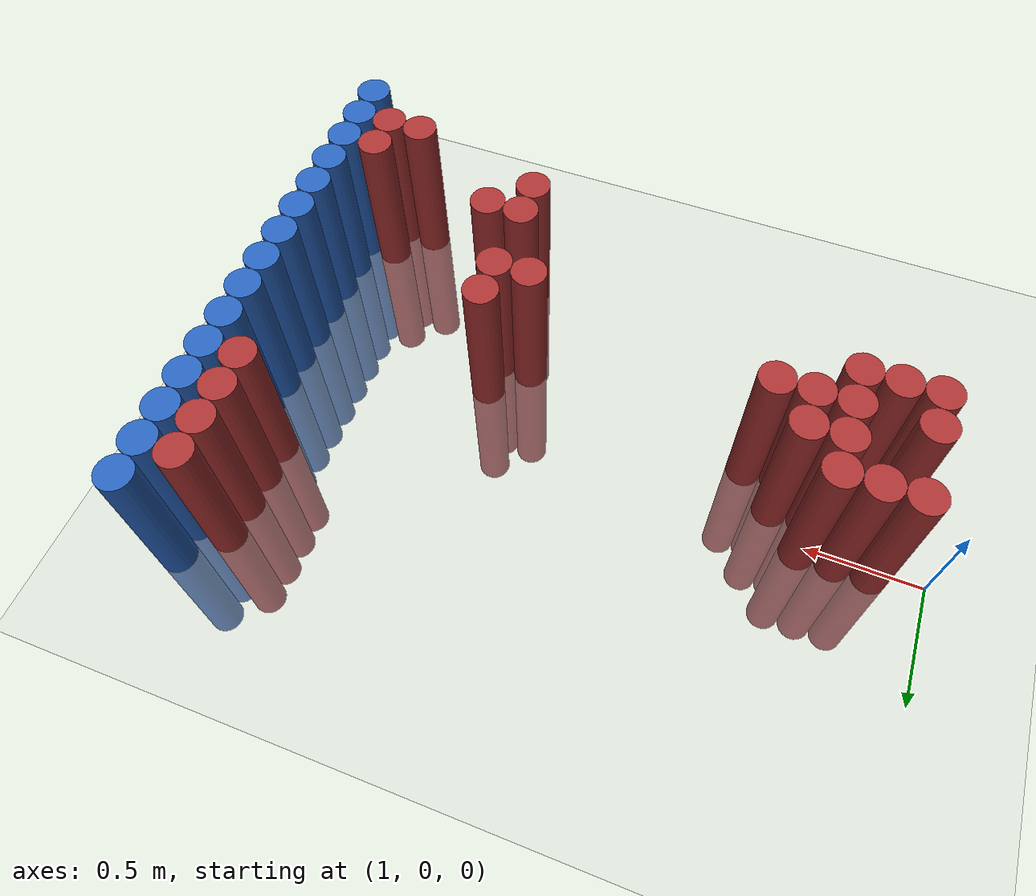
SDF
<sdf version="1.6">
 <world name="default">
  <model name="ground_plane">
   <static>1</static>
   <link name="link">
    <collision name="collision">
     <geometry><plane><normal>0 0 1</normal><size>100 100</size></plane></geometry>
     <surface><friction><ode><mu>100</mu><mu2>50</mu2></ode></friction></surface>
    </collision>
    <visual name="visual">
     <cast_shadows>0</cast_shadows>
     <geometry><plane><normal>0 0 1</normal><size>100 100</size></plane></geometry>
     <material>
      <script><uri>file://media/materials/scripts/gazebo.material</uri><name>Gazebo/Grey</name></script>
     </material>
    </visual>
   </link>
  </model>
  <model name="unit_cylinder_98">
   <static>1</static>
   <pose>3.925000 -1.175000 0.000000 0.000000 0.000000 0.000000</pose>
   <link name="link">
    <inertial>
     <mass>1</mass>
     <inertia><ixx>0.145833</ixx><ixy>0</ixy><ixz>0</ixz><iyy>0.145833</iyy><iyz>0</iyz><izz>0.125</izz></inertia>
    </inertial>
    <collision name="collision">
     <geometry><cylinder><radius>0.075000</radius><length>1.5</length></cylinder></geometry>
    </collision>
    <visual name="visual">
     <geometry><cylinder><radius>0.075000</radius><length>1.5</length></cylinder></geometry>
     <material>
      <ambient>0.152000 0.379000 0.720000 1</ambient>
      <diffuse>0.152000 0.379000 0.720000 1</diffuse>
     </material>
     <material>
      <script><name>Gazebo/Grey</name><uri>file://media/materials/scripts/gazebo.material</uri></script>
     </material>
    </visual>
   </link>
  </model>
  <model name="unit_cylinder_100">
   <static>1</static>
   <pose>3.925000 -1.025000 0.000000 0.000000 0.000000 0.000000</pose>
   <link name="link">
    <inertial>
     <mass>1</mass>
     <inertia><ixx>0.145833</ixx><ixy>0</ixy><ixz>0</ixz><iyy>0.145833</iyy><iyz>0</iyz><izz>0.125</izz></inertia>
    </inertial>
    <collision name="collision">
     <geometry><cylinder><radius>0.075000</radius><length>1.5</length></cylinder></geometry>
    </collision>
    <visual name="visual">
     <geometry><cylinder><radius>0.075000</radius><length>1.5</length></cylinder></geometry>
     <material>
      <ambient>0.152000 0.379000 0.720000 1</ambient>
      <diffuse>0.152000 0.379000 0.720000 1</diffuse>
     </material>
     <material>
      <script><name>Gazebo/Grey</name><uri>file://media/materials/scripts/gazebo.material</uri></script>
     </material>
    </visual>
   </link>
  </model>
  <model name="unit_cylinder_102">
   <static>1</static>
   <pose>3.925000 -0.875000 0.000000 0.000000 0.000000 0.000000</pose>
   <link name="link">
    <inertial>
     <mass>1</mass>
     <inertia><ixx>0.145833</ixx><ixy>0</ixy><ixz>0</ixz><iyy>0.145833</iyy><iyz>0</iyz><izz>0.125</izz></inertia>
    </inertial>
    <collision name="collision">
     <geometry><cylinder><radius>0.075000</radius><length>1.5</length></cylinder></geometry>
    </collision>
    <visual name="visual">
     <geometry><cylinder><radius>0.075000</radius><length>1.5</length></cylinder></geometry>
     <material>
      <ambient>0.152000 0.379000 0.720000 1</ambient>
      <diffuse>0.152000 0.379000 0.720000 1</diffuse>
     </material>
     <material>
      <script><name>Gazebo/Grey</name><uri>file://media/materials/scripts/gazebo.material</uri></script>
     </material>
    </visual>
   </link>
  </model>
  <model name="unit_cylinder_104">
   <static>1</static>
   <pose>3.925000 -0.725000 0.000000 0.000000 0.000000 0.000000</pose>
   <link name="link">
    <inertial>
     <mass>1</mass>
     <inertia><ixx>0.145833</ixx><ixy>0</ixy><ixz>0</ixz><iyy>0.145833</iyy><iyz>0</iyz><izz>0.125</izz></inertia>
    </inertial>
    <collision name="collision">
     <geometry><cylinder><radius>0.075000</radius><length>1.5</length></cylinder></geometry>
    </collision>
    <visual name="visual">
     <geometry><cylinder><radius>0.075000</radius><length>1.5</length></cylinder></geometry>
     <material>
      <ambient>0.152000 0.379000 0.720000 1</ambient>
      <diffuse>0.152000 0.379000 0.720000 1</diffuse>
     </material>
     <material>
      <script><name>Gazebo/Grey</name><uri>file://media/materials/scripts/gazebo.material</uri></script>
     </material>
    </visual>
   </link>
  </model>
  <model name="unit_cylinder_106">
   <static>1</static>
   <pose>3.925000 -0.575000 0.000000 0.000000 0.000000 0.000000</pose>
   <link name="link">
    <inertial>
     <mass>1</mass>
     <inertia><ixx>0.145833</ixx><ixy>0</ixy><ixz>0</ixz><iyy>0.145833</iyy><iyz>0</iyz><izz>0.125</izz></inertia>
    </inertial>
    <collision name="collision">
     <geometry><cylinder><radius>0.075000</radius><length>1.5</length></cylinder></geometry>
    </collision>
    <visual name="visual">
     <geometry><cylinder><radius>0.075000</radius><length>1.5</length></cylinder></geometry>
     <material>
      <ambient>0.152000 0.379000 0.720000 1</ambient>
      <diffuse>0.152000 0.379000 0.720000 1</diffuse>
     </material>
     <material>
      <script><name>Gazebo/Grey</name><uri>file://media/materials/scripts/gazebo.material</uri></script>
     </material>
    </visual>
   </link>
  </model>
  <model name="unit_cylinder_108">
   <static>1</static>
   <pose>3.925000 -0.425000 0.000000 0.000000 0.000000 0.000000</pose>
   <link name="link">
    <inertial>
     <mass>1</mass>
     <inertia><ixx>0.145833</ixx><ixy>0</ixy><ixz>0</ixz><iyy>0.145833</iyy><iyz>0</iyz><izz>0.125</izz></inertia>
    </inertial>
    <collision name="collision">
     <geometry><cylinder><radius>0.075000</radius><length>1.5</length></cylinder></geometry>
    </collision>
    <visual name="visual">
     <geometry><cylinder><radius>0.075000</radius><length>1.5</length></cylinder></geometry>
     <material>
      <ambient>0.152000 0.379000 0.720000 1</ambient>
      <diffuse>0.152000 0.379000 0.720000 1</diffuse>
     </material>
     <material>
      <script><name>Gazebo/Grey</name><uri>file://media/materials/scripts/gazebo.material</uri></script>
     </material>
    </visual>
   </link>
  </model>
  <model name="unit_cylinder_110">
   <static>1</static>
   <pose>3.925000 -0.275000 0.000000 0.000000 0.000000 0.000000</pose>
   <link name="link">
    <inertial>
     <mass>1</mass>
     <inertia><ixx>0.145833</ixx><ixy>0</ixy><ixz>0</ixz><iyy>0.145833</iyy><iyz>0</iyz><izz>0.125</izz></inertia>
    </inertial>
    <collision name="collision">
     <geometry><cylinder><radius>0.075000</radius><length>1.5</length></cylinder></geometry>
    </collision>
    <visual name="visual">
     <geometry><cylinder><radius>0.075000</radius><length>1.5</length></cylinder></geometry>
     <material>
      <ambient>0.152000 0.379000 0.720000 1</ambient>
      <diffuse>0.152000 0.379000 0.720000 1</diffuse>
     </material>
     <material>
      <script><name>Gazebo/Grey</name><uri>file://media/materials/scripts/gazebo.material</uri></script>
     </material>
    </visual>
   </link>
  </model>
  <model name="unit_cylinder_112">
   <static>1</static>
   <pose>3.925000 -0.125000 0.000000 0.000000 0.000000 0.000000</pose>
   <link name="link">
    <inertial>
     <mass>1</mass>
     <inertia><ixx>0.145833</ixx><ixy>0</ixy><ixz>0</ixz><iyy>0.145833</iyy><iyz>0</iyz><izz>0.125</izz></inertia>
    </inertial>
    <collision name="collision">
     <geometry><cylinder><radius>0.075000</radius><length>1.5</length></cylinder></geometry>
    </collision>
    <visual name="visual">
     <geometry><cylinder><radius>0.075000</radius><length>1.5</length></cylinder></geometry>
     <material>
      <ambient>0.152000 0.379000 0.720000 1</ambient>
      <diffuse>0.152000 0.379000 0.720000 1</diffuse>
     </material>
     <material>
      <script><name>Gazebo/Grey</name><uri>file://media/materials/scripts/gazebo.material</uri></script>
     </material>
    </visual>
   </link>
  </model>
  <model name="unit_cylinder_114">
   <static>1</static>
   <pose>3.925000 0.025000 0.000000 0.000000 0.000000 0.000000</pose>
   <link name="link">
    <inertial>
     <mass>1</mass>
     <inertia><ixx>0.145833</ixx><ixy>0</ixy><ixz>0</ixz><iyy>0.145833</iyy><iyz>0</iyz><izz>0.125</izz></inertia>
    </inertial>
    <collision name="collision">
     <geometry><cylinder><radius>0.075000</radius><length>1.5</length></cylinder></geometry>
    </collision>
    <visual name="visual">
     <geometry><cylinder><radius>0.075000</radius><length>1.5</length></cylinder></geometry>
     <material>
      <ambient>0.152000 0.379000 0.720000 1</ambient>
      <diffuse>0.152000 0.379000 0.720000 1</diffuse>
     </material>
     <material>
      <script><name>Gazebo/Grey</name><uri>file://media/materials/scripts/gazebo.material</uri></script>
     </material>
    </visual>
   </link>
  </model>
  <model name="unit_cylinder_116">
   <static>1</static>
   <pose>3.925000 0.175000 0.000000 0.000000 0.000000 0.000000</pose>
   <link name="link">
    <inertial>
     <mass>1</mass>
     <inertia><ixx>0.145833</ixx><ixy>0</ixy><ixz>0</ixz><iyy>0.145833</iyy><iyz>0</iyz><izz>0.125</izz></inertia>
    </inertial>
    <collision name="collision">
     <geometry><cylinder><radius>0.075000</radius><length>1.5</length></cylinder></geometry>
    </collision>
    <visual name="visual">
     <geometry><cylinder><radius>0.075000</radius><length>1.5</length></cylinder></geometry>
     <material>
      <ambient>0.152000 0.379000 0.720000 1</ambient>
      <diffuse>0.152000 0.379000 0.720000 1</diffuse>
     </material>
     <material>
      <script><name>Gazebo/Grey</name><uri>file://media/materials/scripts/gazebo.material</uri></script>
     </material>
    </visual>
   </link>
  </model>
  <model name="unit_cylinder_118">
   <static>1</static>
   <pose>3.925000 0.325000 0.000000 0.000000 0.000000 0.000000</pose>
   <link name="link">
    <inertial>
     <mass>1</mass>
     <inertia><ixx>0.145833</ixx><ixy>0</ixy><ixz>0</ixz><iyy>0.145833</iyy><iyz>0</iyz><izz>0.125</izz></inertia>
    </inertial>
    <collision name="collision">
     <geometry><cylinder><radius>0.075000</radius><length>1.5</length></cylinder></geometry>
    </collision>
    <visual name="visual">
     <geometry><cylinder><radius>0.075000</radius><length>1.5</length></cylinder></geometry>
     <material>
      <ambient>0.152000 0.379000 0.720000 1</ambient>
      <diffuse>0.152000 0.379000 0.720000 1</diffuse>
     </material>
     <material>
      <script><name>Gazebo/Grey</name><uri>file://media/materials/scripts/gazebo.material</uri></script>
     </material>
    </visual>
   </link>
  </model>
  <model name="unit_cylinder_120">
   <static>1</static>
   <pose>3.925000 0.475000 0.000000 0.000000 0.000000 0.000000</pose>
   <link name="link">
    <inertial>
     <mass>1</mass>
     <inertia><ixx>0.145833</ixx><ixy>0</ixy><ixz>0</ixz><iyy>0.145833</iyy><iyz>0</iyz><izz>0.125</izz></inertia>
    </inertial>
    <collision name="collision">
     <geometry><cylinder><radius>0.075000</radius><length>1.5</length></cylinder></geometry>
    </collision>
    <visual name="visual">
     <geometry><cylinder><radius>0.075000</radius><length>1.5</length></cylinder></geometry>
     <material>
      <ambient>0.152000 0.379000 0.720000 1</ambient>
      <diffuse>0.152000 0.379000 0.720000 1</diffuse>
     </material>
     <material>
      <script><name>Gazebo/Grey</name><uri>file://media/materials/scripts/gazebo.material</uri></script>
     </material>
    </visual>
   </link>
  </model>
  <model name="unit_cylinder_122">
   <static>1</static>
   <pose>3.925000 0.625000 0.000000 0.000000 0.000000 0.000000</pose>
   <link name="link">
    <inertial>
     <mass>1</mass>
     <inertia><ixx>0.145833</ixx><ixy>0</ixy><ixz>0</ixz><iyy>0.145833</iyy><iyz>0</iyz><izz>0.125</izz></inertia>
    </inertial>
    <collision name="collision">
     <geometry><cylinder><radius>0.075000</radius><length>1.5</length></cylinder></geometry>
    </collision>
    <visual name="visual">
     <geometry><cylinder><radius>0.075000</radius><length>1.5</length></cylinder></geometry>
     <material>
      <ambient>0.152000 0.379000 0.720000 1</ambient>
      <diffuse>0.152000 0.379000 0.720000 1</diffuse>
     </material>
     <material>
      <script><name>Gazebo/Grey</name><uri>file://media/materials/scripts/gazebo.material</uri></script>
     </material>
    </visual>
   </link>
  </model>
  <model name="unit_cylinder_124">
   <static>1</static>
   <pose>3.925000 0.775000 0.000000 0.000000 0.000000 0.000000</pose>
   <link name="link">
    <inertial>
     <mass>1</mass>
     <inertia><ixx>0.145833</ixx><ixy>0</ixy><ixz>0</ixz><iyy>0.145833</iyy><iyz>0</iyz><izz>0.125</izz></inertia>
    </inertial>
    <collision name="collision">
     <geometry><cylinder><radius>0.075000</radius><length>1.5</length></cylinder></geometry>
    </collision>
    <visual name="visual">
     <geometry><cylinder><radius>0.075000</radius><length>1.5</length></cylinder></geometry>
     <material>
      <ambient>0.152000 0.379000 0.720000 1</ambient>
      <diffuse>0.152000 0.379000 0.720000 1</diffuse>
     </material>
     <material>
      <script><name>Gazebo/Grey</name><uri>file://media/materials/scripts/gazebo.material</uri></script>
     </material>
    </visual>
   </link>
  </model>
  <model name="unit_cylinder_126">
   <static>1</static>
   <pose>3.925000 0.925000 0.000000 0.000000 0.000000 0.000000</pose>
   <link name="link">
    <inertial>
     <mass>1</mass>
     <inertia><ixx>0.145833</ixx><ixy>0</ixy><ixz>0</ixz><iyy>0.145833</iyy><iyz>0</iyz><izz>0.125</izz></inertia>
    </inertial>
    <collision name="collision">
     <geometry><cylinder><radius>0.075000</radius><length>1.5</length></cylinder></geometry>
    </collision>
    <visual name="visual">
     <geometry><cylinder><radius>0.075000</radius><length>1.5</length></cylinder></geometry>
     <material>
      <ambient>0.152000 0.379000 0.720000 1</ambient>
      <diffuse>0.152000 0.379000 0.720000 1</diffuse>
     </material>
     <material>
      <script><name>Gazebo/Grey</name><uri>file://media/materials/scripts/gazebo.material</uri></script>
     </material>
    </visual>
   </link>
  </model>
  <model name="unit_cylinder_409">
   <static>1</static>
   <pose>1.225000 -0.425000 0.000000 0.000000 0.000000 0.000000</pose>
   <link name="link">
    <inertial>
     <mass>1</mass>
     <inertia><ixx>0.145833</ixx><ixy>0</ixy><ixz>0</ixz><iyy>0.145833</iyy><iyz>0</iyz><izz>0.125</izz></inertia>
    </inertial>
    <collision name="collision">
     <geometry><cylinder><radius>0.075000</radius><length>1.5</length></cylinder></geometry>
    </collision>
    <visual name="visual">
     <geometry><cylinder><radius>0.075000</radius><length>1.5</length></cylinder></geometry>
     <material>
      <ambient>0.648000 0.192000 0.192000 1</ambient>
      <diffuse>0.648000 0.192000 0.192000 1</diffuse>
     </material>
     <material>
      <script><name>Gazebo/Grey</name><uri>file://media/materials/scripts/gazebo.material</uri></script>
     </material>
    </visual>
   </link>
  </model>
  <model name="unit_cylinder_410">
   <static>1</static>
   <pose>1.225000 -0.275000 0.000000 0.000000 0.000000 0.000000</pose>
   <link name="link">
    <inertial>
     <mass>1</mass>
     <inertia><ixx>0.145833</ixx><ixy>0</ixy><ixz>0</ixz><iyy>0.145833</iyy><iyz>0</iyz><izz>0.125</izz></inertia>
    </inertial>
    <collision name="collision">
     <geometry><cylinder><radius>0.075000</radius><length>1.5</length></cylinder></geometry>
    </collision>
    <visual name="visual">
     <geometry><cylinder><radius>0.075000</radius><length>1.5</length></cylinder></geometry>
     <material>
      <ambient>0.648000 0.192000 0.192000 1</ambient>
      <diffuse>0.648000 0.192000 0.192000 1</diffuse>
     </material>
     <material>
      <script><name>Gazebo/Grey</name><uri>file://media/materials/scripts/gazebo.material</uri></script>
     </material>
    </visual>
   </link>
  </model>
  <model name="unit_cylinder_411">
   <static>1</static>
   <pose>1.225000 0.025000 0.000000 0.000000 0.000000 0.000000</pose>
   <link name="link">
    <inertial>
     <mass>1</mass>
     <inertia><ixx>0.145833</ixx><ixy>0</ixy><ixz>0</ixz><iyy>0.145833</iyy><iyz>0</iyz><izz>0.125</izz></inertia>
    </inertial>
    <collision name="collision">
     <geometry><cylinder><radius>0.075000</radius><length>1.5</length></cylinder></geometry>
    </collision>
    <visual name="visual">
     <geometry><cylinder><radius>0.075000</radius><length>1.5</length></cylinder></geometry>
     <material>
      <ambient>0.648000 0.192000 0.192000 1</ambient>
      <diffuse>0.648000 0.192000 0.192000 1</diffuse>
     </material>
     <material>
      <script><name>Gazebo/Grey</name><uri>file://media/materials/scripts/gazebo.material</uri></script>
     </material>
    </visual>
   </link>
  </model>
  <model name="unit_cylinder_413">
   <static>1</static>
   <pose>1.375000 -0.425000 0.000000 0.000000 0.000000 0.000000</pose>
   <link name="link">
    <inertial>
     <mass>1</mass>
     <inertia><ixx>0.145833</ixx><ixy>0</ixy><ixz>0</ixz><iyy>0.145833</iyy><iyz>0</iyz><izz>0.125</izz></inertia>
    </inertial>
    <collision name="collision">
     <geometry><cylinder><radius>0.075000</radius><length>1.5</length></cylinder></geometry>
    </collision>
    <visual name="visual">
     <geometry><cylinder><radius>0.075000</radius><length>1.5</length></cylinder></geometry>
     <material>
      <ambient>0.648000 0.192000 0.192000 1</ambient>
      <diffuse>0.648000 0.192000 0.192000 1</diffuse>
     </material>
     <material>
      <script><name>Gazebo/Grey</name><uri>file://media/materials/scripts/gazebo.material</uri></script>
     </material>
    </visual>
   </link>
  </model>
  <model name="unit_cylinder_414">
   <static>1</static>
   <pose>1.375000 0.025000 0.000000 0.000000 0.000000 0.000000</pose>
   <link name="link">
    <inertial>
     <mass>1</mass>
     <inertia><ixx>0.145833</ixx><ixy>0</ixy><ixz>0</ixz><iyy>0.145833</iyy><iyz>0</iyz><izz>0.125</izz></inertia>
    </inertial>
    <collision name="collision">
     <geometry><cylinder><radius>0.075000</radius><length>1.5</length></cylinder></geometry>
    </collision>
    <visual name="visual">
     <geometry><cylinder><radius>0.075000</radius><length>1.5</length></cylinder></geometry>
     <material>
      <ambient>0.648000 0.192000 0.192000 1</ambient>
      <diffuse>0.648000 0.192000 0.192000 1</diffuse>
     </material>
     <material>
      <script><name>Gazebo/Grey</name><uri>file://media/materials/scripts/gazebo.material</uri></script>
     </material>
    </visual>
   </link>
  </model>
  <model name="unit_cylinder_416">
   <static>1</static>
   <pose>1.525000 -0.425000 0.000000 0.000000 0.000000 0.000000</pose>
   <link name="link">
    <inertial>
     <mass>1</mass>
     <inertia><ixx>0.145833</ixx><ixy>0</ixy><ixz>0</ixz><iyy>0.145833</iyy><iyz>0</iyz><izz>0.125</izz></inertia>
    </inertial>
    <collision name="collision">
     <geometry><cylinder><radius>0.075000</radius><length>1.5</length></cylinder></geometry>
    </collision>
    <visual name="visual">
     <geometry><cylinder><radius>0.075000</radius><length>1.5</length></cylinder></geometry>
     <material>
      <ambient>0.648000 0.192000 0.192000 1</ambient>
      <diffuse>0.648000 0.192000 0.192000 1</diffuse>
     </material>
     <material>
      <script><name>Gazebo/Grey</name><uri>file://media/materials/scripts/gazebo.material</uri></script>
     </material>
    </visual>
   </link>
  </model>
  <model name="unit_cylinder_417">
   <static>1</static>
   <pose>1.525000 -0.275000 0.000000 0.000000 0.000000 0.000000</pose>
   <link name="link">
    <inertial>
     <mass>1</mass>
     <inertia><ixx>0.145833</ixx><ixy>0</ixy><ixz>0</ixz><iyy>0.145833</iyy><iyz>0</iyz><izz>0.125</izz></inertia>
    </inertial>
    <collision name="collision">
     <geometry><cylinder><radius>0.075000</radius><length>1.5</length></cylinder></geometry>
    </collision>
    <visual name="visual">
     <geometry><cylinder><radius>0.075000</radius><length>1.5</length></cylinder></geometry>
     <material>
      <ambient>0.648000 0.192000 0.192000 1</ambient>
      <diffuse>0.648000 0.192000 0.192000 1</diffuse>
     </material>
     <material>
      <script><name>Gazebo/Grey</name><uri>file://media/materials/scripts/gazebo.material</uri></script>
     </material>
    </visual>
   </link>
  </model>
  <model name="unit_cylinder_418">
   <static>1</static>
   <pose>1.525000 -0.125000 0.000000 0.000000 0.000000 0.000000</pose>
   <link name="link">
    <inertial>
     <mass>1</mass>
     <inertia><ixx>0.145833</ixx><ixy>0</ixy><ixz>0</ixz><iyy>0.145833</iyy><iyz>0</iyz><izz>0.125</izz></inertia>
    </inertial>
    <collision name="collision">
     <geometry><cylinder><radius>0.075000</radius><length>1.5</length></cylinder></geometry>
    </collision>
    <visual name="visual">
     <geometry><cylinder><radius>0.075000</radius><length>1.5</length></cylinder></geometry>
     <material>
      <ambient>0.648000 0.192000 0.192000 1</ambient>
      <diffuse>0.648000 0.192000 0.192000 1</diffuse>
     </material>
     <material>
      <script><name>Gazebo/Grey</name><uri>file://media/materials/scripts/gazebo.material</uri></script>
     </material>
    </visual>
   </link>
  </model>
  <model name="unit_cylinder_419">
   <static>1</static>
   <pose>1.525000 0.025000 0.000000 0.000000 0.000000 0.000000</pose>
   <link name="link">
    <inertial>
     <mass>1</mass>
     <inertia><ixx>0.145833</ixx><ixy>0</ixy><ixz>0</ixz><iyy>0.145833</iyy><iyz>0</iyz><izz>0.125</izz></inertia>
    </inertial>
    <collision name="collision">
     <geometry><cylinder><radius>0.075000</radius><length>1.5</length></cylinder></geometry>
    </collision>
    <visual name="visual">
     <geometry><cylinder><radius>0.075000</radius><length>1.5</length></cylinder></geometry>
     <material>
      <ambient>0.648000 0.192000 0.192000 1</ambient>
      <diffuse>0.648000 0.192000 0.192000 1</diffuse>
     </material>
     <material>
      <script><name>Gazebo/Grey</name><uri>file://media/materials/scripts/gazebo.material</uri></script>
     </material>
    </visual>
   </link>
  </model>
  <model name="unit_cylinder_422">
   <static>1</static>
   <pose>1.675000 -0.275000 0.000000 0.000000 0.000000 0.000000</pose>
   <link name="link">
    <inertial>
     <mass>1</mass>
     <inertia><ixx>0.145833</ixx><ixy>0</ixy><ixz>0</ixz><iyy>0.145833</iyy><iyz>0</iyz><izz>0.125</izz></inertia>
    </inertial>
    <collision name="collision">
     <geometry><cylinder><radius>0.075000</radius><length>1.5</length></cylinder></geometry>
    </collision>
    <visual name="visual">
     <geometry><cylinder><radius>0.075000</radius><length>1.5</length></cylinder></geometry>
     <material>
      <ambient>0.648000 0.192000 0.192000 1</ambient>
      <diffuse>0.648000 0.192000 0.192000 1</diffuse>
     </material>
     <material>
      <script><name>Gazebo/Grey</name><uri>file://media/materials/scripts/gazebo.material</uri></script>
     </material>
    </visual>
   </link>
  </model>
  <model name="unit_cylinder_423">
   <static>1</static>
   <pose>1.675000 -0.125000 0.000000 0.000000 0.000000 0.000000</pose>
   <link name="link">
    <inertial>
     <mass>1</mass>
     <inertia><ixx>0.145833</ixx><ixy>0</ixy><ixz>0</ixz><iyy>0.145833</iyy><iyz>0</iyz><izz>0.125</izz></inertia>
    </inertial>
    <collision name="collision">
     <geometry><cylinder><radius>0.075000</radius><length>1.5</length></cylinder></geometry>
    </collision>
    <visual name="visual">
     <geometry><cylinder><radius>0.075000</radius><length>1.5</length></cylinder></geometry>
     <material>
      <ambient>0.648000 0.192000 0.192000 1</ambient>
      <diffuse>0.648000 0.192000 0.192000 1</diffuse>
     </material>
     <material>
      <script><name>Gazebo/Grey</name><uri>file://media/materials/scripts/gazebo.material</uri></script>
     </material>
    </visual>
   </link>
  </model>
  <model name="unit_cylinder_425">
   <static>1</static>
   <pose>1.825000 -0.275000 0.000000 0.000000 0.000000 0.000000</pose>
   <link name="link">
    <inertial>
     <mass>1</mass>
     <inertia><ixx>0.145833</ixx><ixy>0</ixy><ixz>0</ixz><iyy>0.145833</iyy><iyz>0</iyz><izz>0.125</izz></inertia>
    </inertial>
    <collision name="collision">
     <geometry><cylinder><radius>0.075000</radius><length>1.5</length></cylinder></geometry>
    </collision>
    <visual name="visual">
     <geometry><cylinder><radius>0.075000</radius><length>1.5</length></cylinder></geometry>
     <material>
      <ambient>0.648000 0.192000 0.192000 1</ambient>
      <diffuse>0.648000 0.192000 0.192000 1</diffuse>
     </material>
     <material>
      <script><name>Gazebo/Grey</name><uri>file://media/materials/scripts/gazebo.material</uri></script>
     </material>
    </visual>
   </link>
  </model>
  <model name="unit_cylinder_444">
   <static>1</static>
   <pose>2.875000 -0.425000 0.000000 0.000000 0.000000 0.000000</pose>
   <link name="link">
    <inertial>
     <mass>1</mass>
     <inertia><ixx>0.145833</ixx><ixy>0</ixy><ixz>0</ixz><iyy>0.145833</iyy><iyz>0</iyz><izz>0.125</izz></inertia>
    </inertial>
    <collision name="collision">
     <geometry><cylinder><radius>0.075000</radius><length>1.5</length></cylinder></geometry>
    </collision>
    <visual name="visual">
     <geometry><cylinder><radius>0.075000</radius><length>1.5</length></cylinder></geometry>
     <material>
      <ambient>0.648000 0.192000 0.192000 1</ambient>
      <diffuse>0.648000 0.192000 0.192000 1</diffuse>
     </material>
     <material>
      <script><name>Gazebo/Grey</name><uri>file://media/materials/scripts/gazebo.material</uri></script>
     </material>
    </visual>
   </link>
  </model>
  <model name="unit_cylinder_445">
   <static>1</static>
   <pose>3.025000 -0.875000 0.000000 0.000000 0.000000 0.000000</pose>
   <link name="link">
    <inertial>
     <mass>1</mass>
     <inertia><ixx>0.145833</ixx><ixy>0</ixy><ixz>0</ixz><iyy>0.145833</iyy><iyz>0</iyz><izz>0.125</izz></inertia>
    </inertial>
    <collision name="collision">
     <geometry><cylinder><radius>0.075000</radius><length>1.5</length></cylinder></geometry>
    </collision>
    <visual name="visual">
     <geometry><cylinder><radius>0.075000</radius><length>1.5</length></cylinder></geometry>
     <material>
      <ambient>0.648000 0.192000 0.192000 1</ambient>
      <diffuse>0.648000 0.192000 0.192000 1</diffuse>
     </material>
     <material>
      <script><name>Gazebo/Grey</name><uri>file://media/materials/scripts/gazebo.material</uri></script>
     </material>
    </visual>
   </link>
  </model>
  <model name="unit_cylinder_446">
   <static>1</static>
   <pose>3.025000 -0.725000 0.000000 0.000000 0.000000 0.000000</pose>
   <link name="link">
    <inertial>
     <mass>1</mass>
     <inertia><ixx>0.145833</ixx><ixy>0</ixy><ixz>0</ixz><iyy>0.145833</iyy><iyz>0</iyz><izz>0.125</izz></inertia>
    </inertial>
    <collision name="collision">
     <geometry><cylinder><radius>0.075000</radius><length>1.5</length></cylinder></geometry>
    </collision>
    <visual name="visual">
     <geometry><cylinder><radius>0.075000</radius><length>1.5</length></cylinder></geometry>
     <material>
      <ambient>0.648000 0.192000 0.192000 1</ambient>
      <diffuse>0.648000 0.192000 0.192000 1</diffuse>
     </material>
     <material>
      <script><name>Gazebo/Grey</name><uri>file://media/materials/scripts/gazebo.material</uri></script>
     </material>
    </visual>
   </link>
  </model>
  <model name="unit_cylinder_447">
   <static>1</static>
   <pose>3.025000 -0.425000 0.000000 0.000000 0.000000 0.000000</pose>
   <link name="link">
    <inertial>
     <mass>1</mass>
     <inertia><ixx>0.145833</ixx><ixy>0</ixy><ixz>0</ixz><iyy>0.145833</iyy><iyz>0</iyz><izz>0.125</izz></inertia>
    </inertial>
    <collision name="collision">
     <geometry><cylinder><radius>0.075000</radius><length>1.5</length></cylinder></geometry>
    </collision>
    <visual name="visual">
     <geometry><cylinder><radius>0.075000</radius><length>1.5</length></cylinder></geometry>
     <material>
      <ambient>0.648000 0.192000 0.192000 1</ambient>
      <diffuse>0.648000 0.192000 0.192000 1</diffuse>
     </material>
     <material>
      <script><name>Gazebo/Grey</name><uri>file://media/materials/scripts/gazebo.material</uri></script>
     </material>
    </visual>
   </link>
  </model>
  <model name="unit_cylinder_448">
   <static>1</static>
   <pose>3.025000 -0.275000 0.000000 0.000000 0.000000 0.000000</pose>
   <link name="link">
    <inertial>
     <mass>1</mass>
     <inertia><ixx>0.145833</ixx><ixy>0</ixy><ixz>0</ixz><iyy>0.145833</iyy><iyz>0</iyz><izz>0.125</izz></inertia>
    </inertial>
    <collision name="collision">
     <geometry><cylinder><radius>0.075000</radius><length>1.5</length></cylinder></geometry>
    </collision>
    <visual name="visual">
     <geometry><cylinder><radius>0.075000</radius><length>1.5</length></cylinder></geometry>
     <material>
      <ambient>0.648000 0.192000 0.192000 1</ambient>
      <diffuse>0.648000 0.192000 0.192000 1</diffuse>
     </material>
     <material>
      <script><name>Gazebo/Grey</name><uri>file://media/materials/scripts/gazebo.material</uri></script>
     </material>
    </visual>
   </link>
  </model>
  <model name="unit_cylinder_449">
   <static>1</static>
   <pose>3.175000 -0.725000 0.000000 0.000000 0.000000 0.000000</pose>
   <link name="link">
    <inertial>
     <mass>1</mass>
     <inertia><ixx>0.145833</ixx><ixy>0</ixy><ixz>0</ixz><iyy>0.145833</iyy><iyz>0</iyz><izz>0.125</izz></inertia>
    </inertial>
    <collision name="collision">
     <geometry><cylinder><radius>0.075000</radius><length>1.5</length></cylinder></geometry>
    </collision>
    <visual name="visual">
     <geometry><cylinder><radius>0.075000</radius><length>1.5</length></cylinder></geometry>
     <material>
      <ambient>0.648000 0.192000 0.192000 1</ambient>
      <diffuse>0.648000 0.192000 0.192000 1</diffuse>
     </material>
     <material>
      <script><name>Gazebo/Grey</name><uri>file://media/materials/scripts/gazebo.material</uri></script>
     </material>
    </visual>
   </link>
  </model>
  <model name="unit_cylinder_457">
   <static>1</static>
   <pose>3.625000 -1.025000 0.000000 0.000000 0.000000 0.000000</pose>
   <link name="link">
    <inertial>
     <mass>1</mass>
     <inertia><ixx>0.145833</ixx><ixy>0</ixy><ixz>0</ixz><iyy>0.145833</iyy><iyz>0</iyz><izz>0.125</izz></inertia>
    </inertial>
    <collision name="collision">
     <geometry><cylinder><radius>0.075000</radius><length>1.5</length></cylinder></geometry>
    </collision>
    <visual name="visual">
     <geometry><cylinder><radius>0.075000</radius><length>1.5</length></cylinder></geometry>
     <material>
      <ambient>0.648000 0.192000 0.192000 1</ambient>
      <diffuse>0.648000 0.192000 0.192000 1</diffuse>
     </material>
     <material>
      <script><name>Gazebo/Grey</name><uri>file://media/materials/scripts/gazebo.material</uri></script>
     </material>
    </visual>
   </link>
  </model>
  <model name="unit_cylinder_467">
   <static>1</static>
   <pose>3.775000 -1.025000 0.000000 0.000000 0.000000 0.000000</pose>
   <link name="link">
    <inertial>
     <mass>1</mass>
     <inertia><ixx>0.145833</ixx><ixy>0</ixy><ixz>0</ixz><iyy>0.145833</iyy><iyz>0</iyz><izz>0.125</izz></inertia>
    </inertial>
    <collision name="collision">
     <geometry><cylinder><radius>0.075000</radius><length>1.5</length></cylinder></geometry>
    </collision>
    <visual name="visual">
     <geometry><cylinder><radius>0.075000</radius><length>1.5</length></cylinder></geometry>
     <material>
      <ambient>0.648000 0.192000 0.192000 1</ambient>
      <diffuse>0.648000 0.192000 0.192000 1</diffuse>
     </material>
     <material>
      <script><name>Gazebo/Grey</name><uri>file://media/materials/scripts/gazebo.material</uri></script>
     </material>
    </visual>
   </link>
  </model>
  <model name="unit_cylinder_468">
   <static>1</static>
   <pose>3.775000 -0.875000 0.000000 0.000000 0.000000 0.000000</pose>
   <link name="link">
    <inertial>
     <mass>1</mass>
     <inertia><ixx>0.145833</ixx><ixy>0</ixy><ixz>0</ixz><iyy>0.145833</iyy><iyz>0</iyz><izz>0.125</izz></inertia>
    </inertial>
    <collision name="collision">
     <geometry><cylinder><radius>0.075000</radius><length>1.5</length></cylinder></geometry>
    </collision>
    <visual name="visual">
     <geometry><cylinder><radius>0.075000</radius><length>1.5</length></cylinder></geometry>
     <material>
      <ambient>0.648000 0.192000 0.192000 1</ambient>
      <diffuse>0.648000 0.192000 0.192000 1</diffuse>
     </material>
     <material>
      <script><name>Gazebo/Grey</name><uri>file://media/materials/scripts/gazebo.material</uri></script>
     </material>
    </visual>
   </link>
  </model>
  <model name="unit_cylinder_469">
   <static>1</static>
   <pose>3.775000 0.325000 0.000000 0.000000 0.000000 0.000000</pose>
   <link name="link">
    <inertial>
     <mass>1</mass>
     <inertia><ixx>0.145833</ixx><ixy>0</ixy><ixz>0</ixz><iyy>0.145833</iyy><iyz>0</iyz><izz>0.125</izz></inertia>
    </inertial>
    <collision name="collision">
     <geometry><cylinder><radius>0.075000</radius><length>1.5</length></cylinder></geometry>
    </collision>
    <visual name="visual">
     <geometry><cylinder><radius>0.075000</radius><length>1.5</length></cylinder></geometry>
     <material>
      <ambient>0.648000 0.192000 0.192000 1</ambient>
      <diffuse>0.648000 0.192000 0.192000 1</diffuse>
     </material>
     <material>
      <script><name>Gazebo/Grey</name><uri>file://media/materials/scripts/gazebo.material</uri></script>
     </material>
    </visual>
   </link>
  </model>
  <model name="unit_cylinder_470">
   <static>1</static>
   <pose>3.775000 0.475000 0.000000 0.000000 0.000000 0.000000</pose>
   <link name="link">
    <inertial>
     <mass>1</mass>
     <inertia><ixx>0.145833</ixx><ixy>0</ixy><ixz>0</ixz><iyy>0.145833</iyy><iyz>0</iyz><izz>0.125</izz></inertia>
    </inertial>
    <collision name="collision">
     <geometry><cylinder><radius>0.075000</radius><length>1.5</length></cylinder></geometry>
    </collision>
    <visual name="visual">
     <geometry><cylinder><radius>0.075000</radius><length>1.5</length></cylinder></geometry>
     <material>
      <ambient>0.648000 0.192000 0.192000 1</ambient>
      <diffuse>0.648000 0.192000 0.192000 1</diffuse>
     </material>
     <material>
      <script><name>Gazebo/Grey</name><uri>file://media/materials/scripts/gazebo.material</uri></script>
     </material>
    </visual>
   </link>
  </model>
  <model name="unit_cylinder_471">
   <static>1</static>
   <pose>3.775000 0.625000 0.000000 0.000000 0.000000 0.000000</pose>
   <link name="link">
    <inertial>
     <mass>1</mass>
     <inertia><ixx>0.145833</ixx><ixy>0</ixy><ixz>0</ixz><iyy>0.145833</iyy><iyz>0</iyz><izz>0.125</izz></inertia>
    </inertial>
    <collision name="collision">
     <geometry><cylinder><radius>0.075000</radius><length>1.5</length></cylinder></geometry>
    </collision>
    <visual name="visual">
     <geometry><cylinder><radius>0.075000</radius><length>1.5</length></cylinder></geometry>
     <material>
      <ambient>0.648000 0.192000 0.192000 1</ambient>
      <diffuse>0.648000 0.192000 0.192000 1</diffuse>
     </material>
     <material>
      <script><name>Gazebo/Grey</name><uri>file://media/materials/scripts/gazebo.material</uri></script>
     </material>
    </visual>
   </link>
  </model>
  <model name="unit_cylinder_472">
   <static>1</static>
   <pose>3.775000 0.775000 0.000000 0.000000 0.000000 0.000000</pose>
   <link name="link">
    <inertial>
     <mass>1</mass>
     <inertia><ixx>0.145833</ixx><ixy>0</ixy><ixz>0</ixz><iyy>0.145833</iyy><iyz>0</iyz><izz>0.125</izz></inertia>
    </inertial>
    <collision name="collision">
     <geometry><cylinder><radius>0.075000</radius><length>1.5</length></cylinder></geometry>
    </collision>
    <visual name="visual">
     <geometry><cylinder><radius>0.075000</radius><length>1.5</length></cylinder></geometry>
     <material>
      <ambient>0.648000 0.192000 0.192000 1</ambient>
      <diffuse>0.648000 0.192000 0.192000 1</diffuse>
     </material>
     <material>
      <script><name>Gazebo/Grey</name><uri>file://media/materials/scripts/gazebo.material</uri></script>
     </material>
    </visual>
   </link>
  </model>
  <model name="unit_cylinder_495">
   <static>1</static>
   <pose>3.925000 -1.175000 0.000000 0.000000 0.000000 0.000000</pose>
   <link name="link">
    <inertial>
     <mass>1</mass>
     <inertia><ixx>0.145833</ixx><ixy>0</ixy><ixz>0</ixz><iyy>0.145833</iyy><iyz>0</iyz><izz>0.125</izz></inertia>
    </inertial>
    <collision name="collision">
     <geometry><cylinder><radius>0.075000</radius><length>1.5</length></cylinder></geometry>
    </collision>
    <visual name="visual">
     <geometry><cylinder><radius>0.075000</radius><length>1.5</length></cylinder></geometry>
     <material>
      <ambient>0.152000 0.379000 0.720000 1</ambient>
      <diffuse>0.152000 0.379000 0.720000 1</diffuse>
     </material>
     <material>
      <script><name>Gazebo/Grey</name><uri>file://media/materials/scripts/gazebo.material</uri></script>
     </material>
    </visual>
   </link>
  </model>
  <model name="unit_cylinder_496">
   <static>1</static>
   <pose>3.925000 -1.025000 0.000000 0.000000 0.000000 0.000000</pose>
   <link name="link">
    <inertial>
     <mass>1</mass>
     <inertia><ixx>0.145833</ixx><ixy>0</ixy><ixz>0</ixz><iyy>0.145833</iyy><iyz>0</iyz><izz>0.125</izz></inertia>
    </inertial>
    <collision name="collision">
     <geometry><cylinder><radius>0.075000</radius><length>1.5</length></cylinder></geometry>
    </collision>
    <visual name="visual">
     <geometry><cylinder><radius>0.075000</radius><length>1.5</length></cylinder></geometry>
     <material>
      <ambient>0.152000 0.379000 0.720000 1</ambient>
      <diffuse>0.152000 0.379000 0.720000 1</diffuse>
     </material>
     <material>
      <script><name>Gazebo/Grey</name><uri>file://media/materials/scripts/gazebo.material</uri></script>
     </material>
    </visual>
   </link>
  </model>
  <model name="unit_cylinder_497">
   <static>1</static>
   <pose>3.925000 -0.875000 0.000000 0.000000 0.000000 0.000000</pose>
   <link name="link">
    <inertial>
     <mass>1</mass>
     <inertia><ixx>0.145833</ixx><ixy>0</ixy><ixz>0</ixz><iyy>0.145833</iyy><iyz>0</iyz><izz>0.125</izz></inertia>
    </inertial>
    <collision name="collision">
     <geometry><cylinder><radius>0.075000</radius><length>1.5</length></cylinder></geometry>
    </collision>
    <visual name="visual">
     <geometry><cylinder><radius>0.075000</radius><length>1.5</length></cylinder></geometry>
     <material>
      <ambient>0.152000 0.379000 0.720000 1</ambient>
      <diffuse>0.152000 0.379000 0.720000 1</diffuse>
     </material>
     <material>
      <script><name>Gazebo/Grey</name><uri>file://media/materials/scripts/gazebo.material</uri></script>
     </material>
    </visual>
   </link>
  </model>
  <model name="unit_cylinder_498">
   <static>1</static>
   <pose>3.925000 -0.725000 0.000000 0.000000 0.000000 0.000000</pose>
   <link name="link">
    <inertial>
     <mass>1</mass>
     <inertia><ixx>0.145833</ixx><ixy>0</ixy><ixz>0</ixz><iyy>0.145833</iyy><iyz>0</iyz><izz>0.125</izz></inertia>
    </inertial>
    <collision name="collision">
     <geometry><cylinder><radius>0.075000</radius><length>1.5</length></cylinder></geometry>
    </collision>
    <visual name="visual">
     <geometry><cylinder><radius>0.075000</radius><length>1.5</length></cylinder></geometry>
     <material>
      <ambient>0.152000 0.379000 0.720000 1</ambient>
      <diffuse>0.152000 0.379000 0.720000 1</diffuse>
     </material>
     <material>
      <script><name>Gazebo/Grey</name><uri>file://media/materials/scripts/gazebo.material</uri></script>
     </material>
    </visual>
   </link>
  </model>
  <model name="unit_cylinder_499">
   <static>1</static>
   <pose>3.925000 -0.575000 0.000000 0.000000 0.000000 0.000000</pose>
   <link name="link">
    <inertial>
     <mass>1</mass>
     <inertia><ixx>0.145833</ixx><ixy>0</ixy><ixz>0</ixz><iyy>0.145833</iyy><iyz>0</iyz><izz>0.125</izz></inertia>
    </inertial>
    <collision name="collision">
     <geometry><cylinder><radius>0.075000</radius><length>1.5</length></cylinder></geometry>
    </collision>
    <visual name="visual">
     <geometry><cylinder><radius>0.075000</radius><length>1.5</length></cylinder></geometry>
     <material>
      <ambient>0.152000 0.379000 0.720000 1</ambient>
      <diffuse>0.152000 0.379000 0.720000 1</diffuse>
     </material>
     <material>
      <script><name>Gazebo/Grey</name><uri>file://media/materials/scripts/gazebo.material</uri></script>
     </material>
    </visual>
   </link>
  </model>
  <model name="unit_cylinder_500">
   <static>1</static>
   <pose>3.925000 -0.425000 0.000000 0.000000 0.000000 0.000000</pose>
   <link name="link">
    <inertial>
     <mass>1</mass>
     <inertia><ixx>0.145833</ixx><ixy>0</ixy><ixz>0</ixz><iyy>0.145833</iyy><iyz>0</iyz><izz>0.125</izz></inertia>
    </inertial>
    <collision name="collision">
     <geometry><cylinder><radius>0.075000</radius><length>1.5</length></cylinder></geometry>
    </collision>
    <visual name="visual">
     <geometry><cylinder><radius>0.075000</radius><length>1.5</length></cylinder></geometry>
     <material>
      <ambient>0.152000 0.379000 0.720000 1</ambient>
      <diffuse>0.152000 0.379000 0.720000 1</diffuse>
     </material>
     <material>
      <script><name>Gazebo/Grey</name><uri>file://media/materials/scripts/gazebo.material</uri></script>
     </material>
    </visual>
   </link>
  </model>
  <model name="unit_cylinder_501">
   <static>1</static>
   <pose>3.925000 -0.275000 0.000000 0.000000 0.000000 0.000000</pose>
   <link name="link">
    <inertial>
     <mass>1</mass>
     <inertia><ixx>0.145833</ixx><ixy>0</ixy><ixz>0</ixz><iyy>0.145833</iyy><iyz>0</iyz><izz>0.125</izz></inertia>
    </inertial>
    <collision name="collision">
     <geometry><cylinder><radius>0.075000</radius><length>1.5</length></cylinder></geometry>
    </collision>
    <visual name="visual">
     <geometry><cylinder><radius>0.075000</radius><length>1.5</length></cylinder></geometry>
     <material>
      <ambient>0.152000 0.379000 0.720000 1</ambient>
      <diffuse>0.152000 0.379000 0.720000 1</diffuse>
     </material>
     <material>
      <script><name>Gazebo/Grey</name><uri>file://media/materials/scripts/gazebo.material</uri></script>
     </material>
    </visual>
   </link>
  </model>
  <model name="unit_cylinder_502">
   <static>1</static>
   <pose>3.925000 -0.125000 0.000000 0.000000 0.000000 0.000000</pose>
   <link name="link">
    <inertial>
     <mass>1</mass>
     <inertia><ixx>0.145833</ixx><ixy>0</ixy><ixz>0</ixz><iyy>0.145833</iyy><iyz>0</iyz><izz>0.125</izz></inertia>
    </inertial>
    <collision name="collision">
     <geometry><cylinder><radius>0.075000</radius><length>1.5</length></cylinder></geometry>
    </collision>
    <visual name="visual">
     <geometry><cylinder><radius>0.075000</radius><length>1.5</length></cylinder></geometry>
     <material>
      <ambient>0.152000 0.379000 0.720000 1</ambient>
      <diffuse>0.152000 0.379000 0.720000 1</diffuse>
     </material>
     <material>
      <script><name>Gazebo/Grey</name><uri>file://media/materials/scripts/gazebo.material</uri></script>
     </material>
    </visual>
   </link>
  </model>
  <model name="unit_cylinder_503">
   <static>1</static>
   <pose>3.925000 0.025000 0.000000 0.000000 0.000000 0.000000</pose>
   <link name="link">
    <inertial>
     <mass>1</mass>
     <inertia><ixx>0.145833</ixx><ixy>0</ixy><ixz>0</ixz><iyy>0.145833</iyy><iyz>0</iyz><izz>0.125</izz></inertia>
    </inertial>
    <collision name="collision">
     <geometry><cylinder><radius>0.075000</radius><length>1.5</length></cylinder></geometry>
    </collision>
    <visual name="visual">
     <geometry><cylinder><radius>0.075000</radius><length>1.5</length></cylinder></geometry>
     <material>
      <ambient>0.152000 0.379000 0.720000 1</ambient>
      <diffuse>0.152000 0.379000 0.720000 1</diffuse>
     </material>
     <material>
      <script><name>Gazebo/Grey</name><uri>file://media/materials/scripts/gazebo.material</uri></script>
     </material>
    </visual>
   </link>
  </model>
  <model name="unit_cylinder_504">
   <static>1</static>
   <pose>3.925000 0.175000 0.000000 0.000000 0.000000 0.000000</pose>
   <link name="link">
    <inertial>
     <mass>1</mass>
     <inertia><ixx>0.145833</ixx><ixy>0</ixy><ixz>0</ixz><iyy>0.145833</iyy><iyz>0</iyz><izz>0.125</izz></inertia>
    </inertial>
    <collision name="collision">
     <geometry><cylinder><radius>0.075000</radius><length>1.5</length></cylinder></geometry>
    </collision>
    <visual name="visual">
     <geometry><cylinder><radius>0.075000</radius><length>1.5</length></cylinder></geometry>
     <material>
      <ambient>0.152000 0.379000 0.720000 1</ambient>
      <diffuse>0.152000 0.379000 0.720000 1</diffuse>
     </material>
     <material>
      <script><name>Gazebo/Grey</name><uri>file://media/materials/scripts/gazebo.material</uri></script>
     </material>
    </visual>
   </link>
  </model>
  <model name="unit_cylinder_505">
   <static>1</static>
   <pose>3.925000 0.325000 0.000000 0.000000 0.000000 0.000000</pose>
   <link name="link">
    <inertial>
     <mass>1</mass>
     <inertia><ixx>0.145833</ixx><ixy>0</ixy><ixz>0</ixz><iyy>0.145833</iyy><iyz>0</iyz><izz>0.125</izz></inertia>
    </inertial>
    <collision name="collision">
     <geometry><cylinder><radius>0.075000</radius><length>1.5</length></cylinder></geometry>
    </collision>
    <visual name="visual">
     <geometry><cylinder><radius>0.075000</radius><length>1.5</length></cylinder></geometry>
     <material>
      <ambient>0.152000 0.379000 0.720000 1</ambient>
      <diffuse>0.152000 0.379000 0.720000 1</diffuse>
     </material>
     <material>
      <script><name>Gazebo/Grey</name><uri>file://media/materials/scripts/gazebo.material</uri></script>
     </material>
    </visual>
   </link>
  </model>
  <model name="unit_cylinder_506">
   <static>1</static>
   <pose>3.925000 0.475000 0.000000 0.000000 0.000000 0.000000</pose>
   <link name="link">
    <inertial>
     <mass>1</mass>
     <inertia><ixx>0.145833</ixx><ixy>0</ixy><ixz>0</ixz><iyy>0.145833</iyy><iyz>0</iyz><izz>0.125</izz></inertia>
    </inertial>
    <collision name="collision">
     <geometry><cylinder><radius>0.075000</radius><length>1.5</length></cylinder></geometry>
    </collision>
    <visual name="visual">
     <geometry><cylinder><radius>0.075000</radius><length>1.5</length></cylinder></geometry>
     <material>
      <ambient>0.152000 0.379000 0.720000 1</ambient>
      <diffuse>0.152000 0.379000 0.720000 1</diffuse>
     </material>
     <material>
      <script><name>Gazebo/Grey</name><uri>file://media/materials/scripts/gazebo.material</uri></script>
     </material>
    </visual>
   </link>
  </model>
  <model name="unit_cylinder_507">
   <static>1</static>
   <pose>3.925000 0.625000 0.000000 0.000000 0.000000 0.000000</pose>
   <link name="link">
    <inertial>
     <mass>1</mass>
     <inertia><ixx>0.145833</ixx><ixy>0</ixy><ixz>0</ixz><iyy>0.145833</iyy><iyz>0</iyz><izz>0.125</izz></inertia>
    </inertial>
    <collision name="collision">
     <geometry><cylinder><radius>0.075000</radius><length>1.5</length></cylinder></geometry>
    </collision>
    <visual name="visual">
     <geometry><cylinder><radius>0.075000</radius><length>1.5</length></cylinder></geometry>
     <material>
      <ambient>0.152000 0.379000 0.720000 1</ambient>
      <diffuse>0.152000 0.379000 0.720000 1</diffuse>
     </material>
     <material>
      <script><name>Gazebo/Grey</name><uri>file://media/materials/scripts/gazebo.material</uri></script>
     </material>
    </visual>
   </link>
  </model>
  <model name="unit_cylinder_508">
   <static>1</static>
   <pose>3.925000 0.775000 0.000000 0.000000 0.000000 0.000000</pose>
   <link name="link">
    <inertial>
     <mass>1</mass>
     <inertia><ixx>0.145833</ixx><ixy>0</ixy><ixz>0</ixz><iyy>0.145833</iyy><iyz>0</iyz><izz>0.125</izz></inertia>
    </inertial>
    <collision name="collision">
     <geometry><cylinder><radius>0.075000</radius><length>1.5</length></cylinder></geometry>
    </collision>
    <visual name="visual">
     <geometry><cylinder><radius>0.075000</radius><length>1.5</length></cylinder></geometry>
     <material>
      <ambient>0.152000 0.379000 0.720000 1</ambient>
      <diffuse>0.152000 0.379000 0.720000 1</diffuse>
     </material>
     <material>
      <script><name>Gazebo/Grey</name><uri>file://media/materials/scripts/gazebo.material</uri></script>
     </material>
    </visual>
   </link>
  </model>
 </world>
</sdf>
